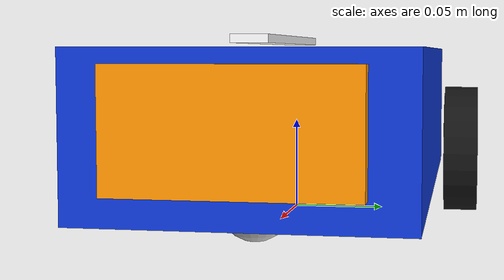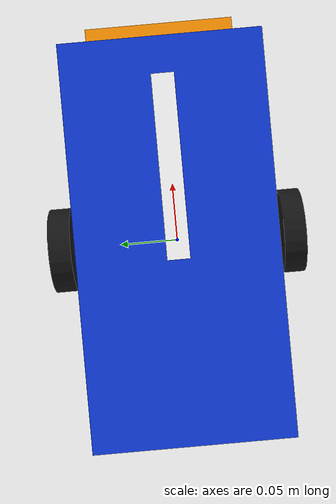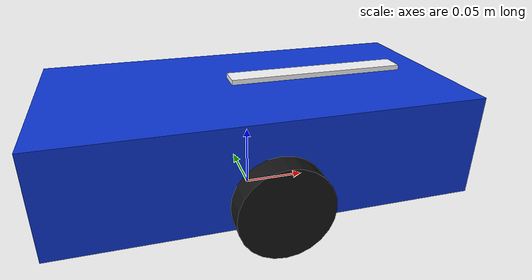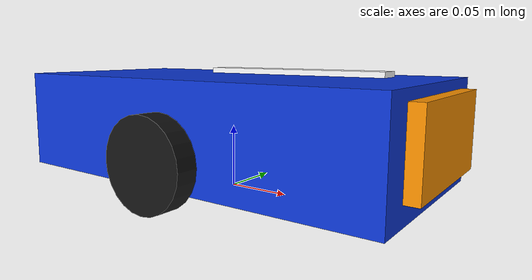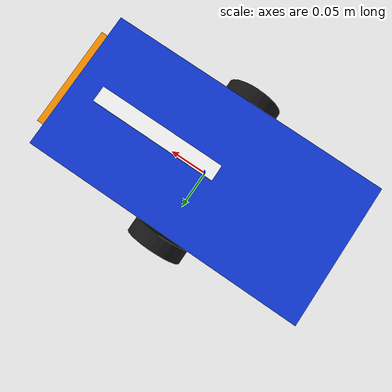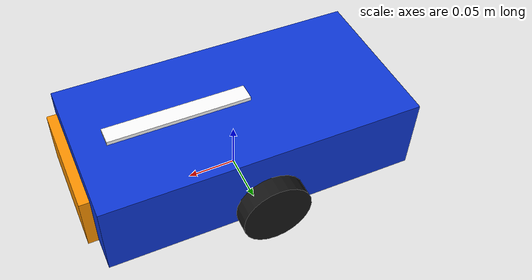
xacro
<?xml version="1.0"?>
<robot name="rectangle_robot" xmlns:xacro="http://www.ros.org/wiki/xacro">

  <xacro:include filename="rectangle_robot_properties.xacro" />
  <xacro:include filename="rectangle_robot_gazebo.xacro" />

  <xacro:macro name="box_inertia" params="m x y z">
    <inertial>
      <mass value="${m}" />
      <origin xyz="0 0 0" rpy="0 0 0" />
      <inertia ixx="${(m / 12.0) * (y*y + z*z)}" ixy="0.0" ixz="0.0"
               iyy="${(m / 12.0) * (x*x + z*z)}" iyz="0.0"
               izz="${(m / 12.0) * (x*x + y*y)}" />
    </inertial>
  </xacro:macro>

  <xacro:macro name="cylinder_inertia" params="m r h">
    <inertial>
      <mass value="${m}" />
      <origin xyz="0 0 0" rpy="0 0 0" />
      <inertia ixx="${(m / 12.0) * (3.0*r*r + h*h)}" ixy="0.0" ixz="0.0"
               iyy="${(m / 12.0) * (3.0*r*r + h*h)}" iyz="0.0"
               izz="${(m / 2.0) * r*r}" />
    </inertial>
  </xacro:macro>

  <xacro:macro name="sphere_inertia" params="m r">
    <inertial>
      <mass value="${m}" />
      <origin xyz="0 0 0" rpy="0 0 0" />
      <inertia ixx="${(2.0 / 5.0) * m * r*r}" ixy="0.0" ixz="0.0"
               iyy="${(2.0 / 5.0) * m * r*r}" iyz="0.0"
               izz="${(2.0 / 5.0) * m * r*r}" />
    </inertial>
  </xacro:macro>

  <link name="base_footprint" />

  <link name="base_link">
    <visual>
      <origin xyz="0 0 0" rpy="0 0 0" />
      <geometry>
        <box size="${car_length} ${car_width} ${car_height}" />
      </geometry>
      <material name="body_blue" />
    </visual>
    <collision>
      <origin xyz="0 0 0" rpy="0 0 0" />
      <geometry>
        <box size="${car_length} ${car_width} ${car_height}" />
      </geometry>
    </collision>
    <xacro:box_inertia m="${car_mass}" x="${car_length}" y="${car_width}" z="${car_height}" />
  </link>

  <joint name="base_joint" type="fixed">
    <parent link="base_footprint" />
    <child link="base_link" />
    <origin xyz="0 0 ${car_height / 2.0 + ground_clearance}" rpy="0 0 0" />
  </joint>

  <link name="front_marker_link">
    <visual>
      <origin xyz="0 0 0" rpy="0 0 0" />
      <geometry>
        <box size="0.01 ${car_width * 0.72} ${car_height * 0.72}" />
      </geometry>
      <material name="amber" />
    </visual>
  </link>

  <joint name="front_marker_joint" type="fixed">
    <parent link="base_link" />
    <child link="front_marker_link" />
    <origin xyz="${car_length / 2.0 + 0.006} 0 0.004" rpy="0 0 0" />
  </joint>

  <link name="top_heading_link">
    <visual>
      <origin xyz="0 0 0" rpy="0 0 0" />
      <geometry>
        <box size="${car_length * 0.45} 0.018 0.004" />
      </geometry>
      <material name="white" />
    </visual>
  </link>

  <joint name="top_heading_joint" type="fixed">
    <parent link="base_link" />
    <child link="top_heading_link" />
    <origin xyz="${car_length * 0.18} 0 ${car_height / 2.0 + 0.004}" rpy="0 0 0" />
  </joint>

  <xacro:macro name="wheel" params="prefix y_dir">
    <link name="${prefix}_wheel_link">
      <visual>
        <origin xyz="0 0 0" rpy="0 0 0" />
        <geometry>
          <cylinder radius="${wheel_radius}" length="${wheel_width}" />
        </geometry>
        <material name="dark_grey" />
      </visual>
      <collision>
        <origin xyz="0 0 0" rpy="0 0 0" />
        <geometry>
          <cylinder radius="${wheel_radius}" length="${wheel_width}" />
        </geometry>
      </collision>
      <xacro:cylinder_inertia m="${wheel_mass}" r="${wheel_radius}" h="${wheel_width}" />
    </link>

    <joint name="${prefix}_wheel_joint" type="continuous">
      <parent link="base_link" />
      <child link="${prefix}_wheel_link" />
      <origin xyz="${wheel_x} ${y_dir * wheel_y} ${-car_height / 2.0 - ground_clearance + wheel_radius}" rpy="${-pi / 2.0} 0 0" />
      <axis xyz="0 0 1" />
    </joint>
  </xacro:macro>

  <xacro:wheel prefix="left" y_dir="1" />
  <xacro:wheel prefix="right" y_dir="-1" />

  <xacro:macro name="caster" params="prefix x_dir">
    <link name="${prefix}_caster_link">
      <visual>
        <origin xyz="0 0 0" rpy="0 0 0" />
        <geometry>
          <sphere radius="${caster_radius}" />
        </geometry>
        <material name="light_grey" />
      </visual>
      <collision>
        <origin xyz="0 0 0" rpy="0 0 0" />
        <geometry>
          <sphere radius="${caster_radius}" />
        </geometry>
      </collision>
      <xacro:sphere_inertia m="${caster_mass}" r="${caster_radius}" />
    </link>

    <joint name="${prefix}_caster_joint" type="fixed">
      <parent link="base_link" />
      <child link="${prefix}_caster_link" />
      <origin xyz="${x_dir * car_length * 0.36} 0 ${-car_height / 2.0 - ground_clearance + caster_radius}" rpy="0 0 0" />
    </joint>
  </xacro:macro>

  <xacro:caster prefix="front" x_dir="1" />
  <xacro:caster prefix="back" x_dir="-1" />
</robot>

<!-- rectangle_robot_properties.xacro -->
<robot xmlns:xacro="http://www.ros.org/wiki/xacro">

  <material name="body_blue">
    <color rgba="0.05 0.22 0.85 1.0" />
  </material>

  <material name="dark_grey">
    <color rgba="0.08 0.08 0.08 1.0" />
  </material>

  <material name="light_grey">
    <color rgba="0.75 0.75 0.75 1.0" />
  </material>

  <material name="amber">
    <color rgba="1.0 0.58 0.0 1.0" />
  </material>

  <material name="white">
    <color rgba="1.0 1.0 1.0 1.0" />
  </material>

  <xacro:property name="car_length" value="0.32" />
  <xacro:property name="car_width" value="0.16" />
  <xacro:property name="car_height" value="0.08" />
  <xacro:property name="car_mass" value="2.4" />

  <xacro:property name="wheel_radius" value="0.035" />
  <xacro:property name="wheel_width" value="0.018" />
  <xacro:property name="wheel_mass" value="0.08" />
  <xacro:property name="wheel_y" value="0.095" />
  <xacro:property name="wheel_x" value="0.0" />

  <xacro:property name="caster_radius" value="0.018" />
  <xacro:property name="caster_mass" value="0.02" />
  <xacro:property name="ground_clearance" value="0.012" />
</robot>
